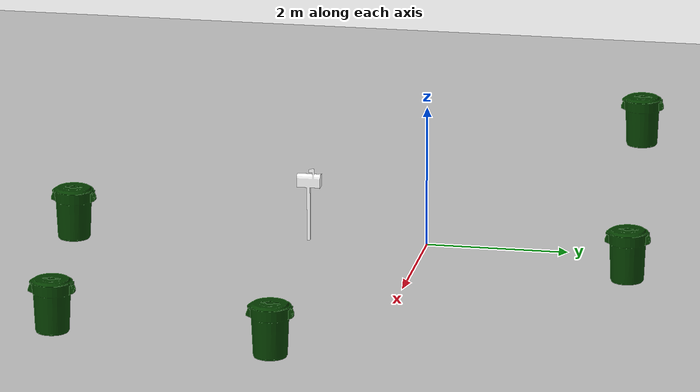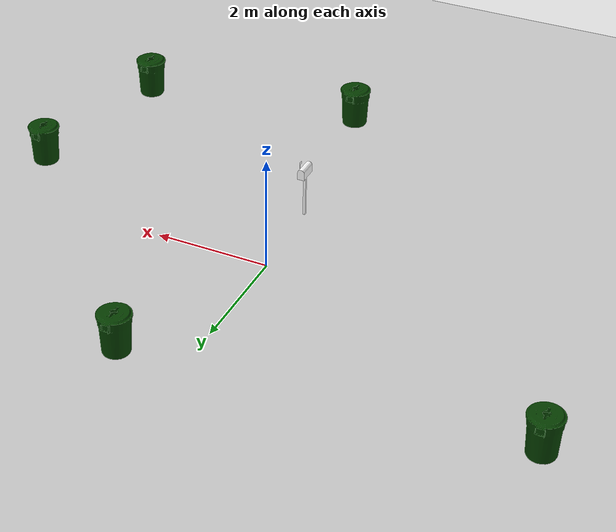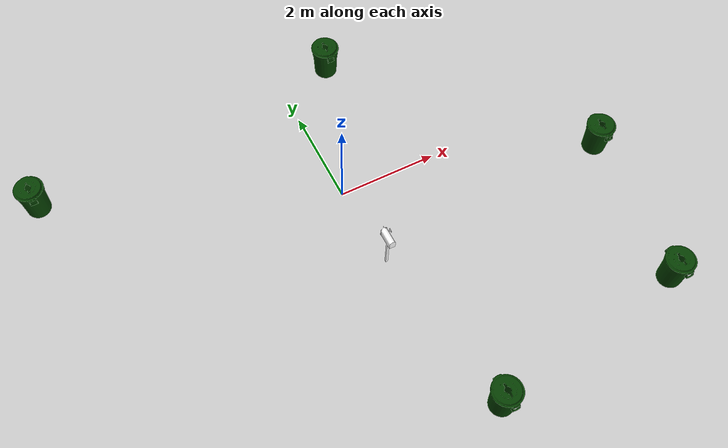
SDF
<sdf version="1.7">
 <world name="default">
  <light name="sun" type="directional">
   <pose>0 0 10 0 -0 0</pose>
   <diffuse>0.8 0.8 0.8 1</diffuse>
   <specular>0.2 0.2 0.2 1</specular>
   <attenuation>
    <range>1000</range>
    <constant>0.9</constant>
    <linear>0.01</linear>
    <quadratic>0.001</quadratic>
   </attenuation>
   <direction>-0.5 0.1 -0.9</direction>
   <spot><inner_angle>0</inner_angle><outer_angle>0</outer_angle><falloff>0</falloff></spot>
  </light>
  <model name="ground_plane">
   <static>1</static>
   <link name="link">
    <collision name="collision">
     <geometry><plane><normal>0 0 1</normal><size>100 100</size></plane></geometry>
     <surface><friction><ode><mu>100</mu><mu2>50</mu2></ode></friction></surface>
    </collision>
    <visual name="visual">
     <cast_shadows>0</cast_shadows>
     <geometry><plane><normal>0 0 1</normal><size>100 100</size></plane></geometry>
     <material>
      <script><uri>file://media/materials/scripts/gazebo.material</uri><name>Gazebo/Grey</name></script>
     </material>
    </visual>
   </link>
  </model>
  <gravity>0 0 -9.8</gravity>
  <magnetic_field>6e-06 2.3e-05 -4.2e-05</magnetic_field>
  <atmosphere type="adiabatic"/>
  <physics type="ode">
   <max_step_size>0.001</max_step_size>
   <real_time_factor>1</real_time_factor>
   <real_time_update_rate>1000</real_time_update_rate>
  </physics>
  <scene><ambient>0.4 0.4 0.4 1</ambient><background>0.7 0.7 0.7 1</background><shadows>1</shadows></scene>
  <audio><device>default</device></audio>
  <spherical_coordinates>
   <surface_model>EARTH_WGS84</surface_model>
   <latitude_deg>0</latitude_deg>
   <longitude_deg>0</longitude_deg>
   <elevation>0</elevation>
   <heading_deg>0</heading_deg>
  </spherical_coordinates>
  <model name="first_2015_trash_can">
   <link name="link">
    <inertial>
     <pose>0 0 0.3683 0 -0 0</pose>
     <mass>4.83076</mass>
     <inertia>
      <ixx>0.281534</ixx>
      <ixy>0</ixy>
      <ixz>0</ixz>
      <iyy>0.281534</iyy>
      <iyz>0</iyz>
      <izz>0.126223</izz>
     </inertia>
    </inertial>
    <visual name="visual">
     <geometry><mesh><uri>model://first_2015_trash_can/meshes/trash_can.dae</uri></mesh></geometry>
    </visual>
    <collision name="collision">
     <geometry><mesh><uri>model://first_2015_trash_can/meshes/trash_can.dae</uri></mesh></geometry>
    </collision>
   </link>
   <pose>0.532944 -4.94764 -4e-06 2e-06 1e-06 -0.000552</pose>
  </model>
  <model name="first_2015_trash_can_0">
   <link name="link">
    <inertial>
     <pose>0 0 0.3683 0 -0 0</pose>
     <mass>4.83076</mass>
     <inertia>
      <ixx>0.281534</ixx>
      <ixy>0</ixy>
      <ixz>0</ixz>
      <iyy>0.281534</iyy>
      <iyz>0</iyz>
      <izz>0.126223</izz>
     </inertia>
    </inertial>
    <visual name="visual">
     <geometry><mesh><uri>model://first_2015_trash_can/meshes/trash_can.dae</uri></mesh></geometry>
    </visual>
    <collision name="collision">
     <geometry><mesh><uri>model://first_2015_trash_can/meshes/trash_can.dae</uri></mesh></geometry>
    </collision>
   </link>
   <pose>5.05238 -1.24206 -4e-06 -2e-06 5e-06 -0.000395</pose>
  </model>
  <model name="first_2015_trash_can_1">
   <link name="link">
    <inertial>
     <pose>0 0 0.3683 0 -0 0</pose>
     <mass>4.83076</mass>
     <inertia>
      <ixx>0.281534</ixx>
      <ixy>0</ixy>
      <ixz>0</ixz>
      <iyy>0.281534</iyy>
      <iyz>0</iyz>
      <izz>0.126223</izz>
     </inertia>
    </inertial>
    <visual name="visual">
     <geometry><mesh><uri>model://first_2015_trash_can/meshes/trash_can.dae</uri></mesh></geometry>
    </visual>
    <collision name="collision">
     <geometry><mesh><uri>model://first_2015_trash_can/meshes/trash_can.dae</uri></mesh></geometry>
    </collision>
   </link>
   <pose>-5.36819 2.34523 -5e-06 7e-06 2.1e-05 -0.00047</pose>
  </model>
  <model name="first_2015_trash_can_2">
   <link name="link">
    <inertial>
     <pose>0 0 0.3683 0 -0 0</pose>
     <mass>4.83076</mass>
     <inertia>
      <ixx>0.281534</ixx>
      <ixy>0</ixy>
      <ixz>0</ixz>
      <iyy>0.281534</iyy>
      <iyz>0</iyz>
      <izz>0.126223</izz>
     </inertia>
    </inertial>
    <visual name="visual">
     <geometry><mesh><uri>model://first_2015_trash_can/meshes/trash_can.dae</uri></mesh></geometry>
    </visual>
    <collision name="collision">
     <geometry><mesh><uri>model://first_2015_trash_can/meshes/trash_can.dae</uri></mesh></geometry>
    </collision>
   </link>
   <pose>4.56787 -4.30219 -5e-06 -1e-06 1e-06 -0.000258</pose>
  </model>
  <model name="Mailbox">
   <link name="link">
    <collision name="collision">
     <geometry><mesh><uri>model://mailbox/meshes/mailbox.dae</uri></mesh></geometry>
    </collision>
    <visual name="visual">
     <geometry><mesh><uri>model://mailbox/meshes/mailbox.dae</uri></mesh></geometry>
     <material>
      <script>
       <uri>model://mailbox/materials/scripts</uri>
       <uri>model://mailbox/materials/textures</uri>
       <name>Mailbox/Diffuse</name>
      </script>
     </material>
    </visual>
    <inertial>
     <inertia><ixx>1</ixx><ixy>0</ixy><ixz>0</ixz><iyy>1</iyy><iyz>0</iyz><izz>1</izz></inertia>
     <mass>1</mass>
    </inertial>
   </link>
   <pose>0.080534 -1.66983 0 2e-06 -3e-06 0</pose>
  </model>
  <model name="first_2015_trash_can_3">
   <link name="link">
    <inertial>
     <pose>0 0 0.3683 0 -0 0</pose>
     <mass>4.83076</mass>
     <inertia>
      <ixx>0.281534</ixx>
      <ixy>0</ixy>
      <ixz>0</ixz>
      <iyy>0.281534</iyy>
      <iyz>0</iyz>
      <izz>0.126223</izz>
     </inertia>
    </inertial>
    <visual name="visual">
     <geometry><mesh><uri>model://first_2015_trash_can/meshes/trash_can.dae</uri></mesh></geometry>
    </visual>
    <collision name="collision">
     <geometry><mesh><uri>model://first_2015_trash_can/meshes/trash_can.dae</uri></mesh></geometry>
    </collision>
   </link>
   <pose>1.08578 2.9714 -4e-06 -4e-06 2e-06 -7.6e-05</pose>
  </model>
 </world>
</sdf>
